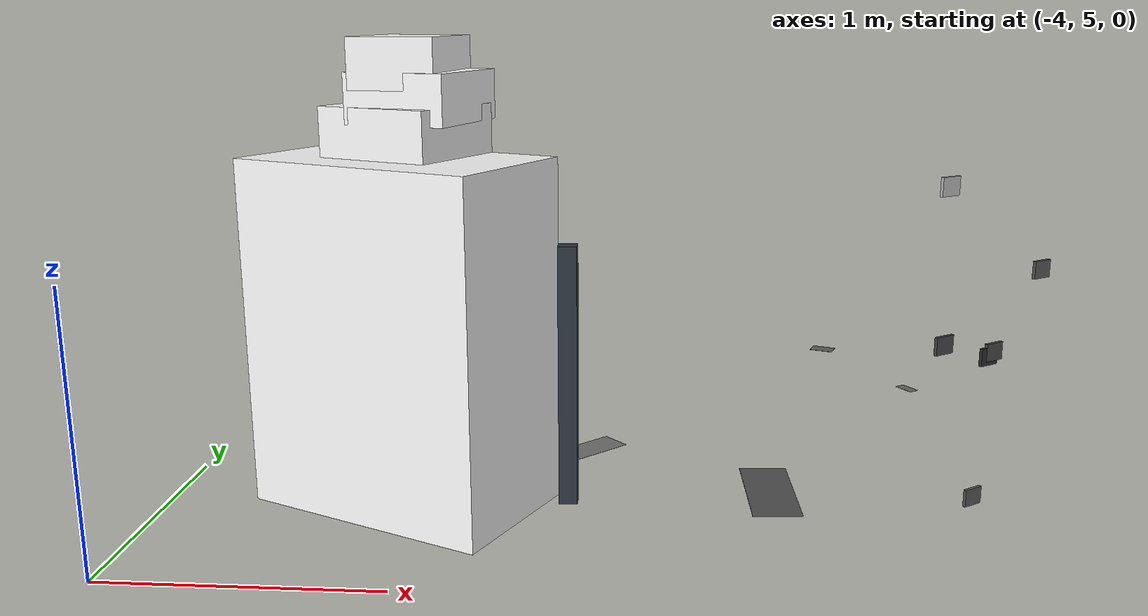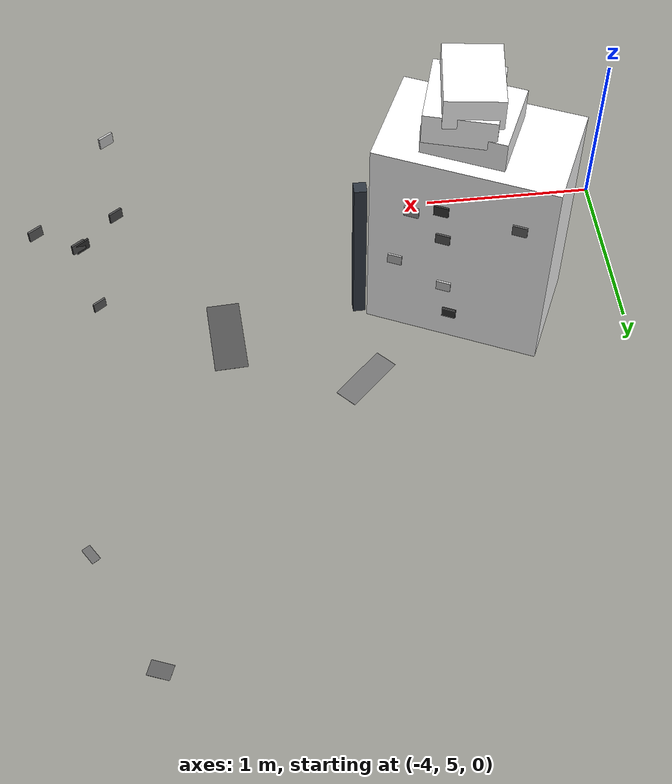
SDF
<sdf version="1.9">
 <world name="warehouse_irregular">
  <model name="concrete_patch_105">
   <static>true</static>
   <pose>-1.244356048107953 7.903320307577882 0.0006 0 0 1.2013912712450239</pose>
   <link name="body">
    <visual name="surface">
     <geometry><box><size>0.08317525162603259 0.12157072021784392 0.001</size></box></geometry>
     <material>
      <ambient>0.3650698230643255 0.3650698230643255 0.3650698230643255 1</ambient>
      <diffuse>0.3650698230643255 0.3650698230643255 0.3650698230643255 1</diffuse>
     </material>
    </visual>
   </link>
  </model>
  <model name="concrete_patch_109">
   <static>true</static>
   <pose>-0.9132540097012729 7.226941602561826 0.0006 0 0 -0.9894423513391288</pose>
   <link name="body">
    <visual name="surface">
     <geometry><box><size>0.10191840308391487 0.05047122903883486 0.001</size></box></geometry>
     <material>
      <ambient>0.4084895722873361 0.4084895722873361 0.4084895722873361 1</ambient>
      <diffuse>0.4084895722873361 0.4084895722873361 0.4084895722873361 1</diffuse>
     </material>
    </visual>
   </link>
  </model>
  <model name="concrete_patch_142">
   <static>true</static>
   <pose>-2.4557729176895453 6.284584680873252 0.0006 0 0 -2.3791206980878727</pose>
   <link name="body">
    <visual name="surface">
     <geometry><box><size>0.3604304037861413 0.13242304861181864 0.001</size></box></geometry>
     <material>
      <ambient>0.45014709684084303 0.45014709684084303 0.45014709684084303 1</ambient>
      <diffuse>0.45014709684084303 0.45014709684084303 0.45014709684084303 1</diffuse>
     </material>
    </visual>
   </link>
  </model>
  <model name="concrete_patch_207">
   <static>true</static>
   <pose>-1.6990184647586943 5.896112181522046 0.0006 0 0 1.6216625170289305</pose>
   <link name="body">
    <visual name="surface">
     <geometry><box><size>0.46622819424813255 0.189147411054911 0.001</size></box></geometry>
     <material>
      <ambient>0.3225437397936728 0.3225437397936728 0.3225437397936728 1</ambient>
      <diffuse>0.3225437397936728 0.3225437397936728 0.3225437397936728 1</diffuse>
     </material>
    </visual>
   </link>
  </model>
  <model name="panel_11_0_1">
   <static>true</static>
   <pose>-0.9479085261361635 5.691763953394741 0.6471169157306171 0 0 0.6170586264047333</pose>
   <link name="body">
    <visual name="surface">
     <geometry><box><size>0.08 0.012 0.065</size></box></geometry>
     <material>
      <ambient>0.2848711912274722 0.2848711912274722 0.2848711912274722 1</ambient>
      <diffuse>0.2848711912274722 0.2848711912274722 0.2848711912274722 1</diffuse>
     </material>
    </visual>
   </link>
  </model>
  <model name="panel_11_2_1">
   <static>true</static>
   <pose>-1.159559949523697 5.5416019656978515 0.7101658321062577 0 0 0.6170586264047333</pose>
   <link name="body">
    <visual name="surface">
     <geometry><box><size>0.08 0.012 0.065</size></box></geometry>
     <material>
      <ambient>0.2755736866013469 0.2755736866013469 0.2755736866013469 1</ambient>
      <diffuse>0.2755736866013469 0.2755736866013469 0.2755736866013469 1</diffuse>
     </material>
    </visual>
   </link>
  </model>
  <model name="panel_11_3_1">
   <static>true</static>
   <pose>-0.9878906768999014 5.663397504754863 0.1031271995988635 0 0 0.6170586264047333</pose>
   <link name="body">
    <visual name="surface">
     <geometry><box><size>0.08 0.012 0.065</size></box></geometry>
     <material>
      <ambient>0.33791141687638 0.33791141687638 0.33791141687638 1</ambient>
      <diffuse>0.33791141687638 0.33791141687638 0.33791141687638 1</diffuse>
     </material>
    </visual>
   </link>
  </model>
  <model name="panel_11_4_1">
   <static>true</static>
   <pose>-0.9680593777928985 5.677467371353711 0.6335054105556085 0 0 0.6170586264047333</pose>
   <link name="body">
    <visual name="surface">
     <geometry><box><size>0.08 0.012 0.065</size></box></geometry>
     <material>
      <ambient>0.17814677598191378 0.17814677598191378 0.17814677598191378 1</ambient>
      <diffuse>0.17814677598191378 0.17814677598191378 0.17814677598191378 1</diffuse>
     </material>
    </visual>
   </link>
  </model>
  <model name="panel_11_5_1">
   <static>true</static>
   <pose>-0.7661372863221851 5.820726613979439 0.922775244954618 0 0 0.6170586264047333</pose>
   <link name="body">
    <visual name="surface">
     <geometry><box><size>0.08 0.012 0.065</size></box></geometry>
     <material>
      <ambient>0.3399884353171897 0.3399884353171897 0.3399884353171897 1</ambient>
      <diffuse>0.3399884353171897 0.3399884353171897 0.3399884353171897 1</diffuse>
     </material>
    </visual>
   </link>
  </model>
  <model name="panel_11_6_1">
   <static>true</static>
   <pose>-1.1798948995416663 5.527174769955236 1.2621459712654104 0 0 0.6170586264047333</pose>
   <link name="body">
    <visual name="surface">
     <geometry><box><size>0.08 0.012 0.065</size></box></geometry>
     <material>
      <ambient>0.7258988499307806 0.7258988499307806 0.7258988499307806 1</ambient>
      <diffuse>0.7258988499307806 0.7258988499307806 0.7258988499307806 1</diffuse>
     </material>
    </visual>
   </link>
  </model>
  <model name="cabinet_13">
   <static>true</static>
   <pose>-3.0961982637968086 5.759689206516679 0.6569964357771559 0 0 -0.4333314382541459</pose>
   <link name="body">
    <visual name="surface">
     <geometry><box><size>1 0.6 1.3139928715543119</size></box></geometry>
     <material>
      <ambient>1 1 1 1</ambient>
      <diffuse>1 1 1 1</diffuse>
      <pbr>
       <metal>
        <albedo_map>model://feature_warehouse_materials/textures/storage_13.png</albedo_map>
        <roughness>.9</roughness>
        <metalness>0</metalness>
       </metal>
      </pbr>
     </material>
    </visual>
    <collision name="solid"><geometry><box><size>1 0.6 1.3139928715543119</size></box></geometry></collision>
   </link>
  </model>
  <model name="panel_13_0_1">
   <static>true</static>
   <pose>-2.6554310439747444 5.891825645044085 0.5490479211631649 0 0 -0.4333314382541459</pose>
   <link name="body">
    <visual name="surface">
     <geometry><box><size>0.08 0.012 0.065</size></box></geometry>
     <material>
      <ambient>0.7398944810094602 0.7398944810094602 0.7398944810094602 1</ambient>
      <diffuse>0.7398944810094602 0.7398944810094602 0.7398944810094602 1</diffuse>
     </material>
    </visual>
   </link>
  </model>
  <model name="panel_13_1_1">
   <static>true</static>
   <pose>-3.254168233570621 6.168837009352424 1.0054210533742272 0 0 -0.4333314382541459</pose>
   <link name="body">
    <visual name="surface">
     <geometry><box><size>0.08 0.012 0.065</size></box></geometry>
     <material>
      <ambient>0.3982675615068552 0.3982675615068552 0.3982675615068552 1</ambient>
      <diffuse>0.3982675615068552 0.3982675615068552 0.3982675615068552 1</diffuse>
     </material>
    </visual>
   </link>
  </model>
  <model name="panel_13_2_1">
   <static>true</static>
   <pose>-2.913119591880566 6.0110476634228105 0.42518089904879286 0 0 -0.4333314382541459</pose>
   <link name="body">
    <visual name="surface">
     <geometry><box><size>0.08 0.012 0.065</size></box></geometry>
     <material>
      <ambient>0.7990500000808917 0.7990500000808917 0.7990500000808917 1</ambient>
      <diffuse>0.7990500000808917 0.7990500000808917 0.7990500000808917 1</diffuse>
     </material>
    </visual>
   </link>
  </model>
  <model name="panel_13_3_1">
   <static>true</static>
   <pose>-2.728347085914661 5.9255609342640065 0.9559131139567517 0 0 -0.4333314382541459</pose>
   <link name="body">
    <visual name="surface">
     <geometry><box><size>0.08 0.012 0.065</size></box></geometry>
     <material>
      <ambient>0.5798469186805171 0.5798469186805171 0.5798469186805171 1</ambient>
      <diffuse>0.5798469186805171 0.5798469186805171 0.5798469186805171 1</diffuse>
     </material>
    </visual>
   </link>
  </model>
  <model name="panel_13_4_1">
   <static>true</static>
   <pose>-2.953151244818213 6.029568682308009 0.20461963890413892 0 0 -0.4333314382541459</pose>
   <link name="body">
    <visual name="surface">
     <geometry><box><size>0.08 0.012 0.065</size></box></geometry>
     <material>
      <ambient>0.18613849746736807 0.18613849746736807 0.18613849746736807 1</ambient>
      <diffuse>0.18613849746736807 0.18613849746736807 0.18613849746736807 1</diffuse>
     </material>
    </visual>
   </link>
  </model>
  <model name="panel_13_5_1">
   <static>true</static>
   <pose>-2.8908248128128267 6.000732775231756 0.8033546976257027 0 0 -0.4333314382541459</pose>
   <link name="body">
    <visual name="surface">
     <geometry><box><size>0.08 0.012 0.065</size></box></geometry>
     <material>
      <ambient>0.3386957808198292 0.3386957808198292 0.3386957808198292 1</ambient>
      <diffuse>0.3386957808198292 0.3386957808198292 0.3386957808198292 1</diffuse>
     </material>
    </visual>
   </link>
  </model>
  <model name="panel_13_6_1">
   <static>true</static>
   <pose>-2.8730050732336228 5.992488305941673 1.0137529007017068 0 0 -0.4333314382541459</pose>
   <link name="body">
    <visual name="surface">
     <geometry><box><size>0.08 0.012 0.065</size></box></geometry>
     <material>
      <ambient>0.21529976172338544 0.21529976172338544 0.21529976172338544 1</ambient>
      <diffuse>0.21529976172338544 0.21529976172338544 0.21529976172338544 1</diffuse>
     </material>
    </visual>
   </link>
  </model>
  <model name="carton_13_0">
   <static>true</static>
   <pose>-3.0541815601141447 5.759689206516679 1.413992871554312 0 0 -0.4333314382541459</pose>
   <link name="body">
    <visual name="surface">
     <geometry><box><size>0.45 0.42 0.18</size></box></geometry>
     <material>
      <ambient>1 1 1 1</ambient>
      <diffuse>1 1 1 1</diffuse>
      <pbr>
       <metal>
        <albedo_map>model://feature_warehouse_materials/textures/storage_13.png</albedo_map>
        <roughness>.9</roughness>
        <metalness>0</metalness>
       </metal>
      </pbr>
     </material>
    </visual>
    <collision name="solid"><geometry><box><size>0.45 0.42 0.18</size></box></geometry></collision>
   </link>
  </model>
  <model name="carton_13_1">
   <static>true</static>
   <pose>-2.9971375282273214 5.759689206516679 1.5339928715543119 0 0 -0.28333143825414586</pose>
   <link name="body">
    <visual name="surface">
     <geometry><box><size>0.38 0.42 0.18</size></box></geometry>
     <material>
      <ambient>1 1 1 1</ambient>
      <diffuse>1 1 1 1</diffuse>
      <pbr>
       <metal>
        <albedo_map>model://feature_warehouse_materials/textures/storage_13.png</albedo_map>
        <roughness>.9</roughness>
        <metalness>0</metalness>
       </metal>
      </pbr>
     </material>
    </visual>
    <collision name="solid"><geometry><box><size>0.38 0.42 0.18</size></box></geometry></collision>
   </link>
  </model>
  <model name="carton_13_2">
   <static>true</static>
   <pose>-3.031169479781097 5.759689206516679 1.653992871554312 0 0 -0.1333314382541459</pose>
   <link name="body">
    <visual name="surface">
     <geometry><box><size>0.31 0.42 0.18</size></box></geometry>
     <material>
      <ambient>1 1 1 1</ambient>
      <diffuse>1 1 1 1</diffuse>
      <pbr>
       <metal>
        <albedo_map>model://feature_warehouse_materials/textures/storage_13.png</albedo_map>
        <roughness>.9</roughness>
        <metalness>0</metalness>
       </metal>
      </pbr>
     </material>
    </visual>
    <collision name="solid"><geometry><box><size>0.31 0.42 0.18</size></box></geometry></collision>
   </link>
  </model>
  <model name="post_13_1">
   <static>true</static>
   <pose>-2.4761982637968085 5.759689206516679 0.5 0 0 0</pose>
   <link name="body">
    <visual name="surface">
     <geometry><box><size>0.07 0.07 1</size></box></geometry>
     <material><ambient>0.18 0.21 0.25 1</ambient><diffuse>0.18 0.21 0.25 1</diffuse></material>
    </visual>
    <collision name="solid"><geometry><box><size>0.07 0.07 1</size></box></geometry></collision>
   </link>
  </model>
 </world>
</sdf>
